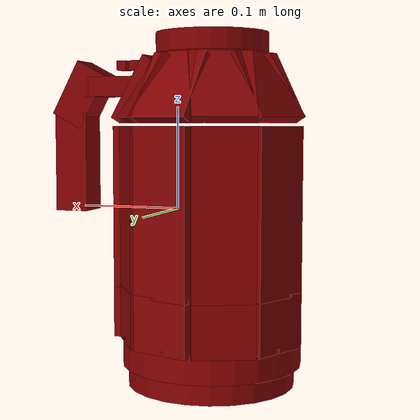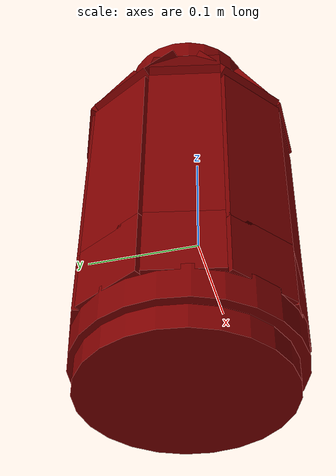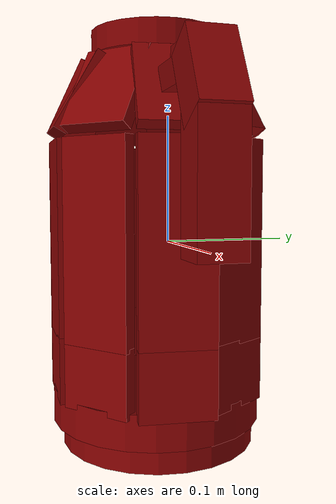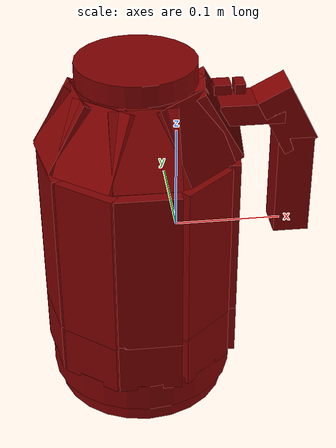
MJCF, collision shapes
<?xml version='1.0' encoding='UTF-8'?>
<mujoco model="model">
  <compiler angle="radian"/>
  <asset>
    <mesh file="visuals/Body001.obj" name="Body001_vis"/>
    <mesh file="visuals/Button001.obj" name="Button001_vis"/>
    <mesh file="visuals/Button002.obj" name="Button002_vis"/>
    <mesh file="visuals/Handle001.obj" name="Handle001_vis"/>
    <mesh file="visuals/Handle001_Clear.obj" name="Handle001_Clear_vis"/>
    <mesh file="visuals/Lid001.obj" name="Lid001_vis"/>
    <texture file="visuals/T_BC001.png" name="Body001_material" type="2d"/>
    <material name="Body001_material" rgba="1 1 1 1.0" texture="Body001_material" shininess="0.5" specular="0.3103448502657381"/>
    <texture file="visuals/T_BC001.png" name="Handle001_material" type="2d"/>
    <material name="Handle001_material" rgba="1 1 1 1.0" texture="Handle001_material" shininess="0.5" specular="0.3103448502657381"/>
    <texture file="visuals/T_BC001.png" name="Button001_material" type="2d"/>
    <material name="Button001_material" rgba="1 1 1 1.0" texture="Button001_material" shininess="0.5" specular="0.3103448502657381"/>
    <texture file="visuals/T_BC001.png" name="Button002_material" type="2d"/>
    <material name="Button002_material" rgba="1 1 1 1.0" texture="Button002_material" shininess="0.5" specular="0.3103448502657381"/>
    <texture file="visuals/T_BC001.png" name="Handle001_Clear_material" type="2d"/>
    <material name="Handle001_Clear_material" rgba="1 1 1 0.2881355881690979" texture="Handle001_Clear_material" shininess="0.5" specular="0.3103448502657381"/>
    <texture file="visuals/T_BC001.png" name="Lid001_material" type="2d"/>
    <material name="Lid001_material" rgba="1 1 1 1.0" texture="Lid001_material" shininess="0.5" specular="0.3103448502657381"/>
  </asset>
  <default>
    <default class="visual">
      <geom conaffinity="0" contype="0" group="1" type="mesh"/>
    </default>
    <default class="collision">
      <geom group="0" rgba="0.5 0 0 0.5"/>
    </default>
    <default class="spawn">
      <geom group="0" rgba="1 1 1 0.5" contype="0" conaffinity="0"/>
      <site group="0" rgba="1 1 1 0.5"/>
    </default>
    <default class="region">
      <geom group="1" conaffinity="0" contype="0" rgba="0 1 0 0"/>
    </default>
  </default>
  <worldbody>
    <body>
      <body name="object">
        <geom mesh="Body001_vis" type="mesh" solimp="0.998 0.998 0.001" solref="0.001 1" density="100" friction="0.95 0.3 0.1" class="visual" material="Body001_material"/>
        <geom class="collision" type="cylinder" pos="-0.03538152202963829 0.0010952461743727326 -0.1637687385082245" size="0.08254653215408325 0.009571613743901253" quat="1.0 0.0 0.0 0.0"/>
        <body name="Handle001">
          <joint axis="0.0 0.0 1.0" pos="-3.725290298461914e-09 0.0 -0.0032227039337158203" limited="true" name="Handle001_joint" range="0.0 0.1" type="slide" damping="1" frictionloss="1" armature=".01" stiffness="0.05"/>
          <geom mesh="Handle001_vis" type="mesh" solimp="0.998 0.998 0.001" solref="0.001 1" density="100" friction="0.95 0.3 0.1" class="visual" material="Handle001_material"/>
          <geom class="collision" type="cylinder" pos="-0.03547241538763046 -0.000652501592412591 -0.1391078531742096" size="0.08874797821044922 0.014229065738618374" quat="1.0 0.0 0.0 0.0"/>
          <geom class="collision" type="box" pos="-0.03471153974533081 -0.08220654726028442 -0.10265162587165833" size="0.02977781742811203 0.005581064615398645 0.026802511885762215" quat="1.0 0.0 0.0 0.0"/>
          <geom class="collision" type="box" pos="-0.03471154719591141 -0.06748807430267334 0.11778312921524048" size="0.02977782115340233 0.00558107253164053 0.03503568843007088" quat="0.9659258127212524 -0.2588191032409668 -0.0 0.0"/>
          <geom class="collision" type="box" pos="-0.07724742591381073 -0.053342461585998535 0.11778312921524048" size="0.02977782115340233 0.00558107253164053 0.03503568843007088" quat="0.9112226963043213 -0.244161456823349 0.08586336672306061 -0.3204464018344879"/>
          <geom class="collision" type="box" pos="-0.08646006882190704 -0.06482115387916565 -0.10265162587165833" size="0.02977781742811203 0.005581064615398645 0.026802511885762215" quat="0.9433671832084656 0.0 -0.0 -0.33175045251846313"/>
          <geom class="collision" type="box" pos="-0.11624616384506226 -0.017508337274193764 -0.10265162587165833" size="0.02977781742811203 0.005581064615398645 0.026802511885762215" quat="0.7745359539985657 0.0 -0.0 -0.6325298547744751"/>
          <geom class="collision" type="box" pos="-0.10182451456785202 -0.014567404985427856 0.11778312921524048" size="0.02977782115340233 0.00558107253164053 0.03503568843007088" quat="0.748144268989563 -0.20046466588974 0.16371077299118042 -0.6109769344329834"/>
          <geom class="collision" type="box" pos="-0.09615639597177505 0.03055177628993988 0.11778312921524048" size="0.02977782115340233 0.00558107253164053 0.03503568843007088" quat="0.49888408184051514 -0.13367560505867004 0.2216261476278305 -0.8271199464797974"/>
          <geom class="collision" type="box" pos="-0.10917527973651886 0.037417806684970856 -0.10265162587165833" size="0.02977781742811203 0.005581064615398645 0.026802511885762215" quat="0.5164828300476074 0.0 -0.0 -0.8562975525856018"/>
          <geom class="collision" type="box" pos="-0.0681149959564209 0.07575635612010956 -0.10265162587165833" size="0.02977781742811203 0.005581064615398645 0.026802511885762215" quat="0.19312620162963867 0.0 -0.0 -0.9811739325523376"/>
          <geom class="collision" type="box" pos="-0.06253695487976074 0.06213580071926117 0.11778312921524048" size="0.02977782115340233 0.00558107253164053 0.03503568843007088" quat="0.18654558062553406 -0.04998474940657616 0.25394657254219055 -0.9477412104606628"/>
          <geom class="collision" type="box" pos="-0.015080209821462631 0.06434522569179535 0.11778312921524048" size="0.02977782115340233 0.00558107253164053 0.03503568843007088" quat="0.15858937799930573 -0.04249390959739685 -0.2553068697452545 0.952817976474762"/>
          <geom class="collision" type="box" pos="-0.010312728583812714 0.07827021181583405 -0.10265162587165833" size="0.02977781742811203 0.005581064615398645 0.026802511885762215" quat="0.1641838103532791 0.0 0.0 0.986429750919342"/>
          <geom class="collision" type="box" pos="0.03392260521650314 0.04363854229450226 -0.10265162587165833" size="0.02977781742811203 0.005581064615398645 0.026802511885762215" quat="0.49108976125717163 0.0 0.0 0.8711089491844177"/>
          <geom class="collision" type="box" pos="0.021329693496227264 0.036019328981637955 0.11778312921524048" size="0.02977782115340233 0.00558107253164053 0.03503568843007088" quat="0.47435638308525085 -0.12710344791412354 -0.22545963525772095 0.8414266109466553"/>
          <geom class="collision" type="box" pos="0.03706934303045273 -0.005954106338322163 0.11778312921524048" size="0.02977782115340233 0.00558107253164053 0.03503568843007088" quat="0.7183259129524231 -0.19247493147850037 -0.1730339527130127 0.6457712650299072"/>
          <geom class="collision" type="box" pos="0.05170482397079468 -0.007515400182455778 -0.10265162587165833" size="0.02977781742811203 0.005581064615398645 0.026802511885762215" quat="0.7436657547950745 0.0 0.0 0.6685516238212585"/>
          <geom class="collision" type="box" pos="0.019679777324199677 -0.06063393875956535 -0.10265162587165833" size="0.02977781742811203 0.005581064615398645 0.026802511885762215" quat="0.9346433877944946 0.0 0.0 0.3555864691734314"/>
          <geom class="collision" type="box" pos="0.00989646464586258 -0.04963749647140503 0.11778312921524048" size="0.02977782115340233 0.00558107253164053 0.03503568843007088" quat="0.9027961492538452 -0.24190358817577362 -0.09203260391950607 0.3434702157974243"/>
          <geom class="collision" type="box" pos="0.0663488358259201 -0.000382203608751297 0.12102849036455154" size="0.02952895313501358 0.01757529005408287 0.00980944000184536" quat="1.0 0.0 0.0 0.0"/>
          <geom class="collision" type="box" pos="0.10790809243917465 -0.000382203608751297 0.04569841921329498" size="0.049608081579208374 0.01757529005408287 0.016732074320316315" quat="0.7070464491844177 0.0 0.7071670889854431 0.0"/>
          <geom class="collision" type="box" pos="0.09872564673423767 -0.000382203608751297 0.11302942037582397" size="0.02952895313501358 0.01757529005408287 0.016728650778532028" quat="0.8562593460083008 0.0 0.5165461897850037 0.0"/>
          <body name="Button001">
            <joint axis="0.0 0.0 -1.0" pos="0.04018687456846237 0.00011159991845488548 0.14219456911087036" limited="true" name="Button001_joint" range="0.0 0.005" type="slide" damping="1" frictionloss="1" armature=".01" stiffness="0.8" springref="-0.1"/>
            <geom mesh="Button001_vis" type="mesh" solimp="0.998 0.998 0.001" solref="0.001 1" density="100" friction="0.95 0.3 0.1" class="visual" material="Button001_material"/>
            <geom class="collision" type="box" pos="0.04034733772277832 0.0005087144672870636 0.14188969135284424" size="0.007815180346369743 0.008083097636699677 0.0046598599292337894" quat="1.0 0.0 0.0 0.0"/>
          </body>
          <body name="Button002">
            <joint axis="0.0 0.0 -1.0" pos="0.05610485374927521 0.00011815689504146576 0.14201116561889648" limited="true" name="Button002_joint" range="0.0 0.005" type="slide" damping="1" frictionloss="1" armature=".01" stiffness="0.8" springref="-0.1"/>
            <geom mesh="Button002_vis" type="mesh" solimp="0.998 0.998 0.001" solref="0.001 1" density="100" friction="0.95 0.3 0.1" class="visual" material="Button002_material"/>
            <geom class="collision" type="box" pos="0.056178849190473557 0.0005087144672870636 0.14188969135284424" size="0.0048311809077858925 0.008083097636699677 0.0046598599292337894" quat="1.0 0.0 0.0 0.0"/>
          </body>
          <body name="Handle001_Clear">
            <geom mesh="Handle001_Clear_vis" type="mesh" solimp="0.998 0.998 0.001" solref="0.001 1" density="100" friction="0.95 0.3 0.1" class="visual" material="Handle001_Clear_material"/>
            <geom class="collision" type="box" pos="-0.03471153974533081 -0.08220654726028442 0.0014674090780317783" size="0.02977781742811203 0.005581064615398645 0.08027459681034088" quat="1.0 0.0 0.0 0.0"/>
            <geom class="collision" type="box" pos="-0.08646006882190704 -0.06482115387916565 0.0014674090780317783" size="0.02977781742811203 0.005581064615398645 0.08027459681034088" quat="0.9433671832084656 0.0 -0.0 -0.33175045251846313"/>
            <geom class="collision" type="box" pos="-0.11624616384506226 -0.017508337274193764 0.0014674090780317783" size="0.02977781742811203 0.005581064615398645 0.08027459681034088" quat="0.7745359539985657 0.0 -0.0 -0.6325298547744751"/>
            <geom class="collision" type="box" pos="-0.10917527973651886 0.037417806684970856 0.0014674090780317783" size="0.02977781742811203 0.005581064615398645 0.08027459681034088" quat="0.5164828300476074 0.0 -0.0 -0.8562975525856018"/>
            <geom class="collision" type="box" pos="-0.0681149959564209 0.07575635612010956 0.0014674090780317783" size="0.02977781742811203 0.005581064615398645 0.08027459681034088" quat="0.19312620162963867 0.0 -0.0 -0.9811739325523376"/>
            <geom class="collision" type="box" pos="-0.010312728583812714 0.07827021181583405 0.0014674090780317783" size="0.02977781742811203 0.005581064615398645 0.08027459681034088" quat="0.1641838103532791 0.0 0.0 0.986429750919342"/>
            <geom class="collision" type="box" pos="0.03392260521650314 0.04363854229450226 0.0014674090780317783" size="0.02977781742811203 0.005581064615398645 0.08027459681034088" quat="0.49108976125717163 0.0 0.0 0.8711089491844177"/>
            <geom class="collision" type="box" pos="0.05170482397079468 -0.007515400182455778 0.0014674090780317783" size="0.02977781742811203 0.005581064615398645 0.08027459681034088" quat="0.7436657547950745 0.0 0.0 0.6685516238212585"/>
            <geom class="collision" type="box" pos="0.019679777324199677 -0.06063393875956535 0.0014674090780317783" size="0.02977781742811203 0.005581064615398645 0.08027459681034088" quat="0.9346433877944946 0.0 0.0 0.3555864691734314"/>
          </body>
          <body name="Lid001">
            <joint axis="0.0 1.0 0.0" pos="0.026003453880548477 -5.4329633712768555e-05 0.1463363915681839" limited="true" name="Lid001_joint" range="0.0 1.5707963267948966" type="hinge" damping="1" frictionloss="1" armature=".01" stiffness="0.05"/>
            <geom mesh="Lid001_vis" type="mesh" solimp="0.998 0.998 0.001" solref="0.001 1" density="100" friction="0.95 0.3 0.1" class="visual" material="Lid001_material"/>
            <geom class="collision" type="cylinder" pos="-0.035547804087400436 0.0003185271052643657 0.16209226846694946" size="0.05490276589989662 0.009788661263883114" quat="1.0 0.0 0.0 0.0"/>
          </body>
        </body>
        <geom class="region" name="reg_main" type="box" pos="0.0 -4.163336342344337e-16 -9.53674295089968e-09" size="0.12277255952358246 0.08594655990600586 0.1726222187280655"/>
      </body>
    </body>
  </worldbody>
  <actuator>
    <motor name="Handle001_joint_actuator" joint="Handle001_joint" gear="50"/>
    <motor name="Button001_joint_actuator" joint="Button001_joint" gear="0.5"/>
    <motor name="Button002_joint_actuator" joint="Button002_joint" gear="0.5"/>
    <motor name="Lid001_joint_actuator" joint="Lid001_joint" gear="10"/>
  </actuator>
</mujoco>
